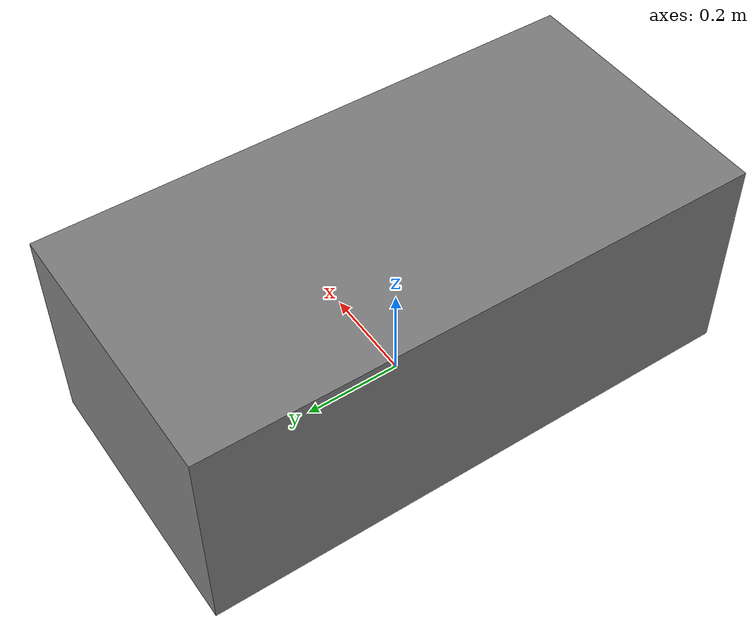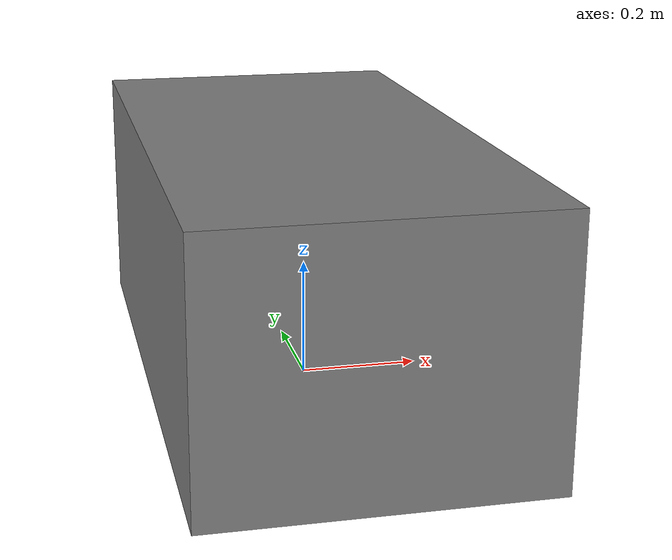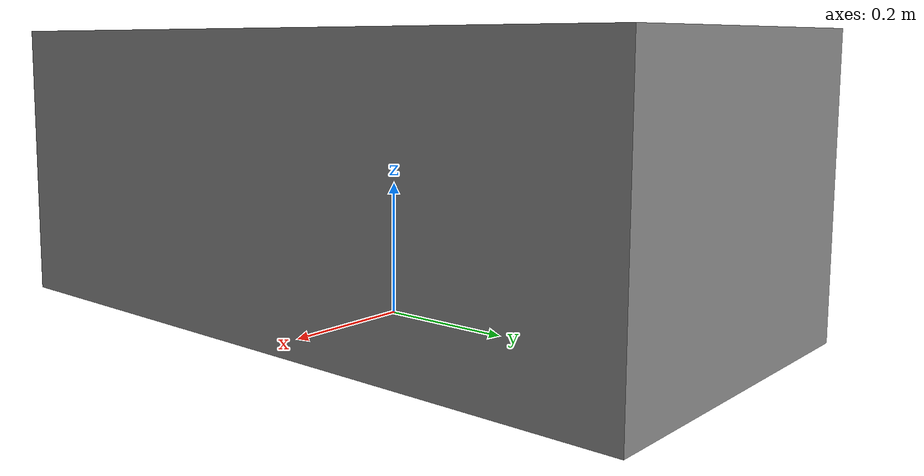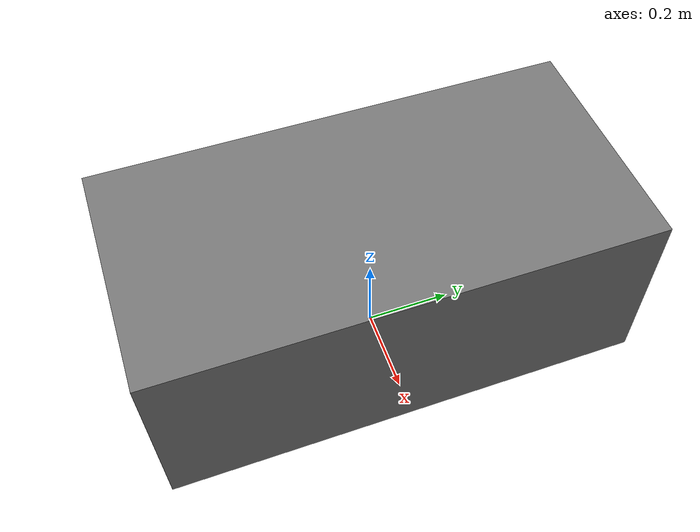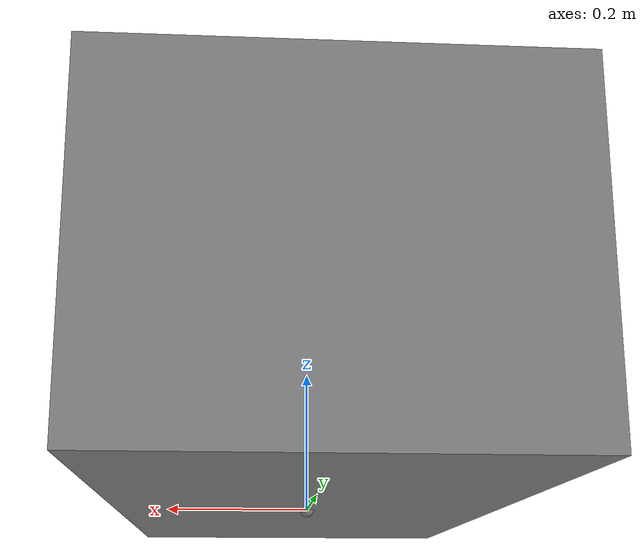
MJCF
<mujoco model="rugged_box">
<!-- Copyright (c) 2023-2025 Boston Dynamics AI Institute LLC. All rights reserved. -->
  <worldbody>
    <body name="rugged_box" pos="0 0 0">
      <joint name="rugged_box_joint" type="free"/>
      <inertial pos="0 0 0.215" mass="20.0" diaginertia="2.77 0.95 2.02"/>
      <geom name="rugged_box_collision" type="box" pos="0 0 0.215" size="0.275 0.555 0.215" friction="0.3 0.3 0.0001"/>
      <geom name="rugged_box_visual" type="box" pos="0 0 0.215" size="0.275 0.555 0.215" contype="0" conaffinity="0" group="2"/>
      <site name="site_object" pos="0 0 0" size="0.01"/>
    </body>
  </worldbody>
</mujoco>
